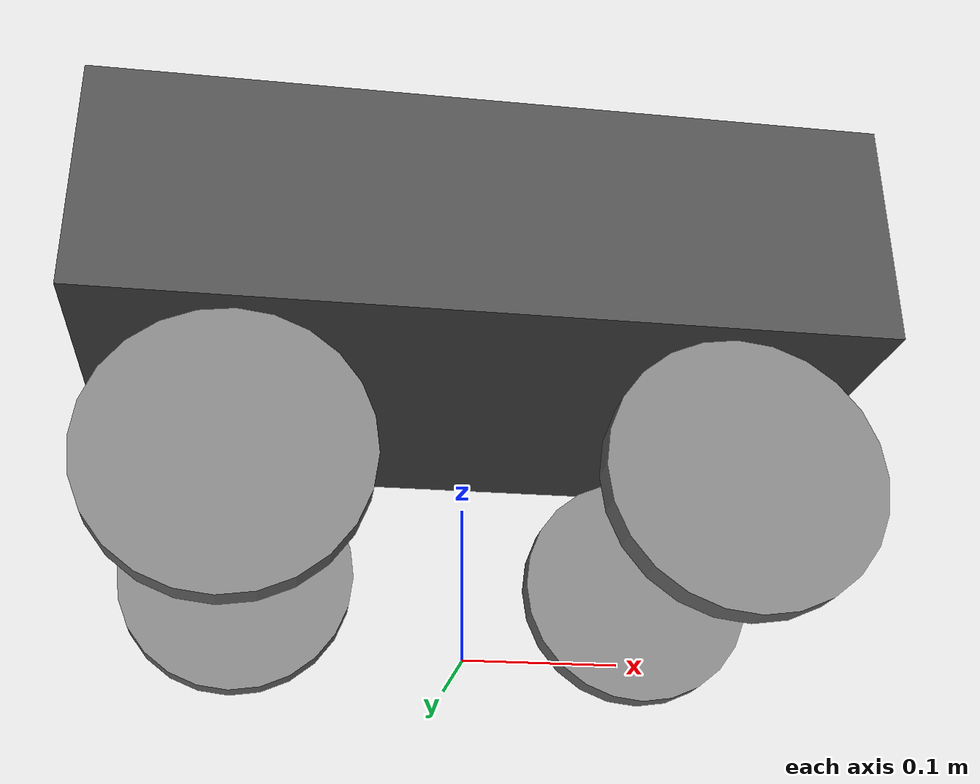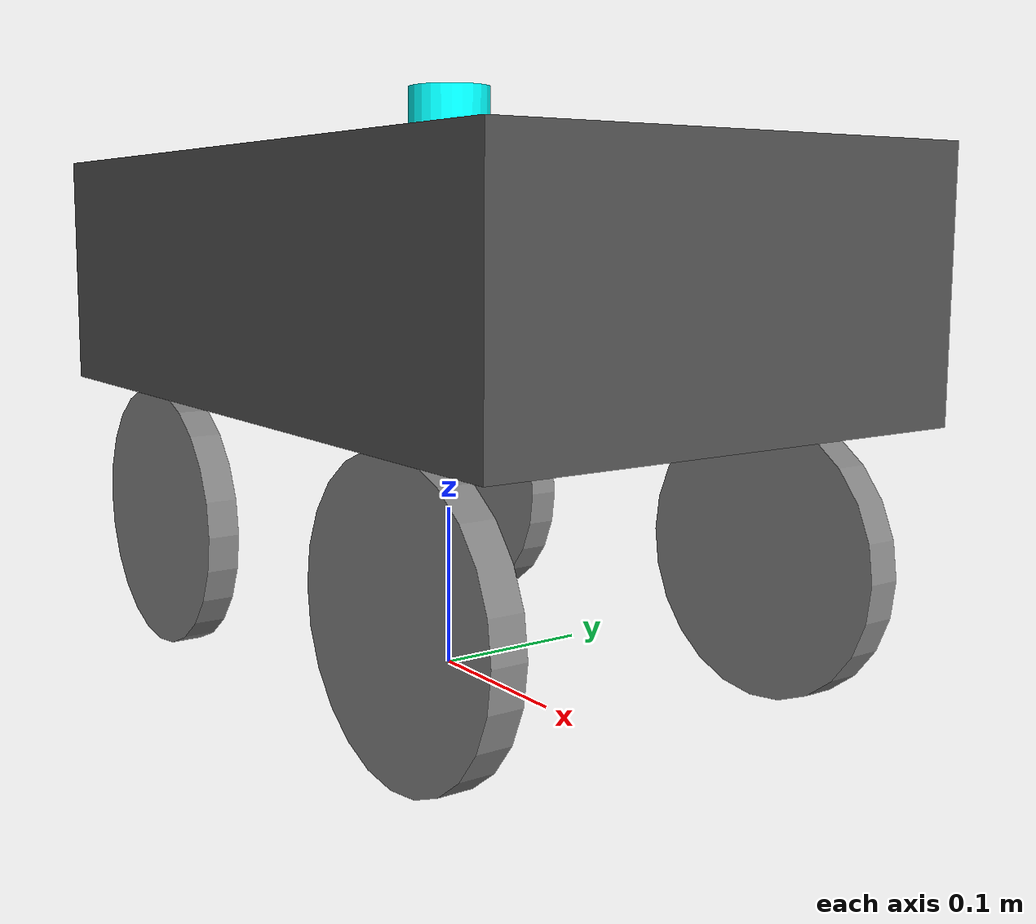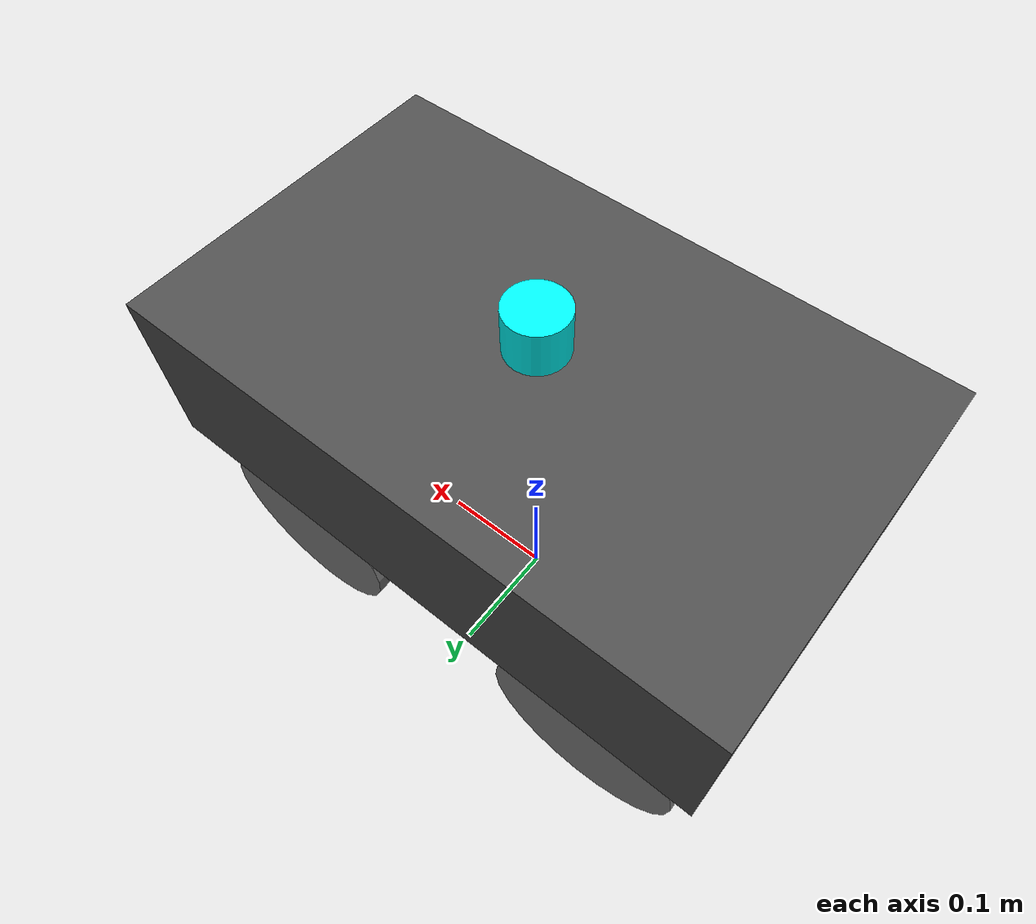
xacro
<?xml version="1.0" ?>
<!-- |    This document was autogenerated by xacro from /home/swimming/gcamp_ros2_ws/src/gcamp_ros2_basic/gcamp_gazebo/urdf/skidbot2.urdf.xacro | -->
<!-- |    EDITING THIS FILE BY HAND IS NOT RECOMMENDED                                 | -->
<robot xmlns:xacro="http://www.ros.org/wiki/xacro" name="wall_bot">
  <xacro:property name="PI" value="3.1415926535"/><!--파이 값-->

  <xacro:property name="BASE_LEN" value="0.5"/><!--이지아이 몸통  길이-->
  <xacro:property name="BASE_WID" value="0.3"/><!--이지아이 몸통 너비-->
  <xacro:property name="BASE_HIG" value="0.15"/> <!--이지아이 몸통 높이-->

  <xacro:property name="WHEEL_LEN_SEP" value="0.3"/><!--바퀴 세로 간격-->
  <xacro:property name="WHEEL_WID_SEP" value="0.25"/><!--바퀴 가로 간격-->
  <xacro:property name="WHEEL_RAD" value="0.085"/><!--바퀴 반 지름 수정 후 (바퀴 베이스 높이 만큼 바퀴 크기 증가)-->
  <xacro:property name="WHEEL_WID" value="0.02"/><!--바퀴 너비-->

  <!-- 바퀴 베이스 tf 복잡하여 사용 안함(주석 처리) -->

  <xacro:property name="VMS_LEN" value="0.765"/><!--전광판 길이-->
  <xacro:property name="VMS_WID" value="0.701"/><!--전광판 너비 -->
  <xacro:property name="VMS_HIG" value="0.134"/><!--전광판 높이-->

  <xacro:property name="VMS_CYLINDER_RAD" value="0.020"/><!--전광판 관절 반지름 -->
  <xacro:property name="VMS_CYLINDER_WID" value="0.380"/><!--전광판 관절 길이 -->

  <xacro:property name="VMS_CYLINDER_X_LEN" value="0.235"/><!--전면으로부터 전광판 X축 관절 간격 -->

  <xacro:property name="VMS_CYLINDER_BASE_LEN" value="0.035"/><!--전광판 관절 베이스 길이 -->
  <xacro:property name="VMS_CYLINDER_BASE_WID" value="0.01"/><!--전광판 관절 베이스 두께 -->
  <xacro:property name="VMS_CYLINDER_BASE_HIG" value="0.13"/><!--전광판 관절 베이스 높이 -->

  <!-- 라이다 베이스 tf 복잡하여 사용 안함(주석 처리) -->

  <xacro:property name="LIDAR_RAD" value="0.025"/>  <!-- 라이다 길이 -->
  <xacro:property name="LIDAR_HIG" value="0.04"/>  <!-- 라이다 높이(0.06) + 라이다 베이스 높이(0.035)-->
  <!-- 베이스 높이만큼 라이다 높이 증가 -->

  <xacro:property name="F_LIDAR_SEP_LEN" value="0.072"/>  <!-- 전면 라이다  세로 간격  -->
  <xacro:property name="F_LIDAR_SEP_WID" value="0.072"/>  <!-- 전면 라이다 가로 간격 -->

  <xacro:property name="B_LIDAR_SEP_LEN" value="0.072"/>  <!-- 후면 라이다  세로 간격  -->
  <xacro:property name="B_LIDAR_SEP_WID" value="0.070"/>  <!-- 후면 라이다 가로 간격 -->

  <xacro:property name="CAMERA_LEN" value="0.025"/>  <!-- 카메라 길이 -->
  <xacro:property name="CAMERA_WID" value="0.1"/>  <!-- 카메라 너비-->
  <xacro:property name="CAMERA_HIG" value="0.04"/>  <!-- 카메라 높이 -->
  <xacro:property name="CAMERA_X_LEN" value="0.042"/>  <!-- 카메라 X 간격 -->
  <xacro:property name="LEFT_CAMERA_Y_LEN" value="0.06"/>  <!-- 왼쪽 카메라 Y 간격 -->

  <xacro:property name="LEFT_CAMERA_X_LEN" value="0.06"/>  <!-- 왼쪽 카메라 X축 간격 -->
  <xacro:property name="LEFT_CAMERA_Y_LEN" value="0.07"/>  <!-- 왼쪽 카메라 Y축 간격 -->

  <xacro:property name="BACK_CAMERA_X_LEN" value="0.13"/>  <!-- 뒤쪽 카메라 X축 간격 -->

  <xacro:property name="GPS_ANTENNA_RAD" value="0.075"/>  <!-- GPS 안테나 반지름 -->
  <xacro:property name="GPS_ANTENNA_HIG" value="0.04"/>  <!-- GPS 안테나 높이 -->

  <xacro:property name="BASE_GPS_ANTENNA_SEP" value="0.15"/>  <!-- 몸통 GPS 안테나 간격  -->

  <xacro:property name="IMU_LEN" value="0.035"/>  <!-- IMU 길이 -->
  <xacro:property name="IMU_WID" value="0.035"/>  <!-- IMU 너비 -->
  <xacro:property name="IMU_HIG" value="0.01"/>  <!-- IMU 높이 -->
  <xacro:property name="IMU_X_SEP" value="0.225"/>  <!-- IMU X축 간격 -->

  <xacro:property name="WHEEL_MASS" value="1.0"/><!--바퀴 무게-->
  <xacro:property name="BASE_LINK_MASS" value="5.0"/><!--이지아이 몸통 무게-->
  <xacro:property name="WHEEL_BASE_MASS" value="0.5"/><!--이지아이 몸통 무게-->

  <xacro:property name="VMS_MASS" value="20.0"/> <!--전광팡 무게-->
  <xacro:property name="VMS_CYLINDER_MASS" value="10.0"/> <!--전광팡 관절 무게-->
  <xacro:property name="VMS_CYLINDER_BASE_MASS" value="1.0"/> <!--전광팡 관절 베이스 무게-->

  <xacro:property name="CAMERA_MASS" value="2.0"/> <!--카메라 무게-->

  <xacro:property name="GPS_ANTENNA_MASS" value="2.0"/> <!--GPS 안테나 무게-->

  <xacro:property name="LIDAR_MASS" value="0.265"/> <!--라이다 무게-->
  <xacro:property name="LIDAR_BASE_MASS" value="0.1"/> <!--라이다 베이스 무게-->

  <xacro:property name="IMU_MASS" value="0.05"/> <!--IMU 무게-->

<!--배터리 탱크 길이-->
<!--배터리 탱크 높이-->
<!--배터리 탱크 너비-->

  <material name="dark">
    <color rgba="0.3 0.3 0.3 1.0"/>
  </material>

  <material name="mid_dark">
    <color rgba="0.40 0.40 0.40 1.0"/>
  </material>

  <material name="gray">
    <color rgba="0.5 0.5 0.5 1.0"/>
  </material>

  <material name="blue_green">
    <color rgba="0 1.0 1.0 1.0"/>
  </material>

  <material name="white">
    <color rgba="1.0 1.0 1.0 1.0"/>
  </material>

  <link name="base_link"/>

  <link name="base_chassis">
    <visual>
      <origin xyz="0 0 0" rpy="0 0 0"/>
      <geometry>
        <box size="${BASE_LEN} ${BASE_WID} ${BASE_HIG}"/>
      </geometry>
      <material name="dark"/>
    </visual>

    <collision>
      <origin xyz="0 0 0" rpy="0 0 0"/>
      <geometry>
        <box size="${BASE_LEN} ${BASE_WID} ${BASE_HIG}"/>
      </geometry>
    </collision>

    <inertial>
      <mass value="${BASE_LINK_MASS}"/>
      <origin xyz="0 0 0" rpy="0 0 0"/>
      <inertia
        ixx="${BASE_LINK_MASS/12.0 * (BASE_WID*BASE_WID + BASE_HIG*BASE_HIG)}"
        iyy="${BASE_LINK_MASS/12.0 * (BASE_LEN*BASE_LEN + BASE_HIG*BASE_HIG)}"
        izz="${BASE_LINK_MASS/12.0 * (BASE_LEN*BASE_LEN + BASE_WID*BASE_WID)}"
        ixy="0.0" ixz="0.0" iyz="0.0"/>
    </inertial>
  </link>

  <link name="imu">
    <visual>
      <origin xyz="0 0 0" rpy="0 0 0"/>
      <geometry>
        <box size="${IMU_LEN} ${IMU_WID} ${IMU_HIG}"/>
      </geometry>
      <material name="mid_dark"/>
    </visual>

    <collision>
      <origin xyz="0 0 0" rpy="0 0 0"/>
      <geometry>
        <box size="${IMU_LEN} ${IMU_WID} ${IMU_HIG}"/>
      </geometry>
    </collision>

    <inertial>
      <mass value="${IMU_MASS}"/>
      <origin xyz="0 0 0" rpy="0 0 0"/>
      <inertia
        ixx="${IMU_MASS/12.0 * (IMU_WID*IMU_WID + IMU_HIG*IMU_HIG)}"
        iyy="${IMU_MASS/12.0 * (IMU_LEN*IMU_LEN + IMU_HIG*IMU_HIG)}"
        izz="${IMU_MASS/12.0 * (IMU_LEN*IMU_LEN + IMU_WID*IMU_WID)}"
        ixy="0" ixz="0" iyz="0"
      />
    </inertial>
  </link>

  <link name="front_lidar">
    <visual>
      <origin xyz="0 0 0" rpy="0 0 0"/>
      <geometry>
        <cylinder radius="${LIDAR_RAD}" length="${LIDAR_HIG}"/>
      </geometry>
      <material name="blue_green"/>
    </visual>

    <collision>
      <origin xyz="0 0 0" rpy="0 0 0"/>
      <geometry>
        <cylinder radius="${LIDAR_RAD}" length="${LIDAR_HIG}"/>
      </geometry>
    </collision>

    <inertial>
      <mass value="${LIDAR_MASS}"/>
      <origin xyz="0 0 0" rpy="0 0 0"/>
      <inertia
        ixx="${0.5*LIDAR_MASS*LIDAR_HIG*LIDAR_HIG}"
        iyy="${(1.0/12.0)*LIDAR_MASS*(3*LIDAR_RAD*LIDAR_RAD + LIDAR_HIG*LIDAR_HIG)}"
        izz="${(1.0/12.0)*LIDAR_MASS*(3*LIDAR_RAD*LIDAR_RAD + LIDAR_HIG*LIDAR_HIG)}"
        ixy="0.0" ixz="0.0" iyz="0.0"
      />
    </inertial>
  </link>

  <link name="front_left_wheel">
    <visual>
      <origin xyz="0 0 0" rpy="${PI/2} 0 0"/>
      <geometry>
        <cylinder radius="${WHEEL_RAD}" length="${WHEEL_WID}"/>
      </geometry>
      <material name="gray"/>
    </visual>

    <collision>
      <origin xyz="0 0 0" rpy="${PI/2} 0 0"/>
      <geometry>
        <cylinder radius="${WHEEL_RAD}" length="${WHEEL_WID}"/>
      </geometry>
    </collision>

    <inertial>
      <mass value="${WHEEL_MASS}"/>
      <origin xyz="0 0 0" rpy="${PI/2} 0 0"/>
      <inertia
        ixx="${0.5*WHEEL_MASS*WHEEL_RAD*WHEEL_RAD}"
        iyy="${(1.0/12.0)*WHEEL_MASS*(3*WHEEL_RAD*WHEEL_RAD + WHEEL_WID*WHEEL_WID)}"
        izz="${(1.0/12.0)*WHEEL_MASS*(3*WHEEL_RAD*WHEEL_RAD + WHEEL_WID*WHEEL_WID)}"
        ixy="0.0" ixz="0.0" iyz="0.0"
      />
    </inertial>
  </link>

  <link name="back_left_wheel">
    <visual>
      <origin xyz="0 0 0" rpy="${PI/2} 0 0"/>
      <geometry>
        <cylinder radius="${WHEEL_RAD}" length="${WHEEL_WID}"/>
      </geometry>
      <material name="gray"/>
    </visual>

    <collision>
      <origin xyz="0 0 0" rpy="${PI/2} 0 0"/>
      <geometry>
        <cylinder radius="${WHEEL_RAD}" length="${WHEEL_WID}"/>
      </geometry>
    </collision>

    <inertial>
      <mass value="${WHEEL_MASS}"/>
      <origin xyz="0 0 0" rpy="${PI/2} 0 0"/>
      <inertia
        ixx="${0.5*WHEEL_MASS*WHEEL_RAD*WHEEL_RAD}"
        iyy="${(1.0/12.0)*WHEEL_MASS*(3*WHEEL_RAD*WHEEL_RAD + WHEEL_WID*WHEEL_WID)}"
        izz="${(1.0/12.0)*WHEEL_MASS*(3*WHEEL_RAD*WHEEL_RAD + WHEEL_WID*WHEEL_WID)}"
        ixy="0.0" ixz="0.0" iyz="0.0"
      />
    </inertial>
  </link>

  <link name="front_right_wheel">
    <visual>
      <origin xyz="0 0 0" rpy="${PI/2} 0 0"/>
      <geometry>
        <cylinder radius="${WHEEL_RAD}" length="${WHEEL_WID}"/>
      </geometry>
      <material name="gray"/>
    </visual>

    <collision>
      <origin xyz="0 0 0" rpy="${PI/2} 0 0"/>
      <geometry>
        <cylinder radius="${WHEEL_RAD}" length="${WHEEL_WID}"/>
      </geometry>
    </collision>

    <inertial>
      <mass value="${WHEEL_MASS}"/>
      <origin xyz="0 0 0" rpy="${PI/2} 0 0"/>
      <inertia
        ixx="${0.5*WHEEL_MASS*WHEEL_RAD*WHEEL_RAD}"
        iyy="${(1.0/12.0)*WHEEL_MASS*(3*WHEEL_RAD*WHEEL_RAD + WHEEL_WID*WHEEL_WID)}"
        izz="${(1.0/12.0)*WHEEL_MASS*(3*WHEEL_RAD*WHEEL_RAD + WHEEL_WID*WHEEL_WID)}"
        ixy="0.0" ixz="0.0" iyz="0.0"
      />
    </inertial>
  </link>

  <link name="back_right_wheel">
    <visual>
      <origin xyz="0 0 0" rpy="${PI/2} 0 0"/>
      <geometry>
        <cylinder radius="${WHEEL_RAD}" length="${WHEEL_WID}"/>
      </geometry>
      <material name="gray"/>
    </visual>

    <collision>
      <origin xyz="0 0 0" rpy="${PI/2} 0 0"/>
      <geometry>
        <cylinder radius="${WHEEL_RAD}" length="${WHEEL_WID}"/>
      </geometry>
    </collision>

    <inertial>
      <mass value="${WHEEL_MASS}"/>
      <origin xyz="0 0 0" rpy="${PI/2} 0 0"/>
      <inertia
        ixx="${0.5*WHEEL_MASS*WHEEL_RAD*WHEEL_RAD}"
        iyy="${(1.0/12.0)*WHEEL_MASS*(3*WHEEL_RAD*WHEEL_RAD + WHEEL_WID*WHEEL_WID)}"
        izz="${(1.0/12.0)*WHEEL_MASS*(3*WHEEL_RAD*WHEEL_RAD + WHEEL_WID*WHEEL_WID)}"
        ixy="0.0" ixz="0.0" iyz="0.0"
      />
    </inertial>
  </link>

  <!-- base_link는 지면 좌표, base_chassis 지면으로부터 떨어져 있는 실제 로봇 몸통 중심 높이(바퀴 크기 + 로봇 몸통 중간-->
  <joint name="base_joint" type="fixed">
    <origin xyz="0 0 ${BASE_HIG/2 +WHEEL_RAD*2}" rpy="0 0 0"/>
    <parent link="base_link"/>
    <child link="base_chassis"/>
  </joint>

  <joint name="imu_joint" type="fixed">
    <origin xyz="${BASE_LEN/2 - IMU_X_SEP} 0 ${IMU_HIG/2}" rpy="0 0 0"/>
    <parent link="base_chassis"/>
    <child link="imu"/>
  </joint>

  <!-- 몸통 GPS -->

  <!--바퀴 -->
  <joint name="front_left_wheel_joint" type="continuous">
    <origin xyz="${WHEEL_LEN_SEP/2} ${WHEEL_WID_SEP/2} ${-(WHEEL_RAD + BASE_HIG/2)}" rpy="0 0 0"/>
    <parent link="base_chassis"/>
    <child link="front_left_wheel"/>
    <axis xyz="0 1 0"/>
  </joint>

  <joint name="back_left_wheel_joint" type="continuous">
    <origin xyz="-${WHEEL_LEN_SEP/2} ${WHEEL_WID_SEP/2} ${-(WHEEL_RAD+ BASE_HIG/2)}" rpy="0 0 0"/>
    <parent link="base_chassis"/>
    <child link="back_left_wheel"/>
    <axis xyz="0 1 0"/>
  </joint>

  <joint name="front_right_wheel_joint" type="continuous">
    <origin xyz="${WHEEL_LEN_SEP/2} -${WHEEL_WID_SEP/2} ${-(WHEEL_RAD + BASE_HIG/2)}" rpy="0 0 0"/>
    <parent link="base_chassis"/>
    <child link="front_right_wheel"/>
    <axis xyz="0 1 0"/>
  </joint>

  <joint name="back_right_wheel_joint" type="continuous">
    <origin xyz="-${WHEEL_LEN_SEP/2} -${WHEEL_WID_SEP/2} ${-(WHEEL_RAD + BASE_HIG/2)}" rpy="0 0 0"/>
    <parent link="base_chassis"/>
    <child link="back_right_wheel"/>
    <axis xyz="0 1 0"/>
  </joint>

  <!--바퀴 베이스-->

  <!-- 라이다 -->
  <joint name="front_lidar_joint" type="fixed">
    <origin xyz="0 0 ${BASE_HIG/2 + LIDAR_HIG/2}" rpy="0 0 0"/> <!-- wall_pilot을 위해 기울기 0도로 수정 -->
    <parent link="base_chassis"/>
    <child link="front_lidar"/>
  </joint>

  <!-- 라이다 베이스 주석처리 -->

  <gazebo reference="base_link">
    <material>Gazebo/White</material>
  </gazebo>

  <gazebo reference="front_left_wheel">
    <material>Gazebo/Black</material>
  </gazebo>
  <gazebo reference="back_left_wheel">
    <material>Gazebo/Black</material>
  </gazebo>
  <gazebo reference="front_right_wheel">
    <material>Gazebo/Black</material>
  </gazebo>
  <gazebo reference="back_right_wheel">
    <material>Gazebo/Black</material>
  </gazebo>

  <gazebo reference="front_lidar">
    <material>Gazebo/Darkgray</material>
    <sensor name="front_lidar_senser" type="ray">
      <visualize>false</visualize>
      <update_rate>10.0</update_rate>
      <ray>
        <scan>
          <horizontal>
            <samples>360</samples> <!-- 라이다 포인트 수 : 180개-->
            <resolution>1</resolution> <!-- 라이다 포인터 간 각도 : 1도-->
            <max_angle>3.14</max_angle>
            <min_angle>-3.14</min_angle>
          </horizontal> <!-- 라이다 범위 : 180도 , 포인트 수 : 180 , 포인터 간 각도 : 1도-->
        </scan>
        <range><!-- ydlidar 기준 0.12~10.0까지 가능 -->
          <min>0.12</min> <!-- 20cm부터-->
          <max>5.0</max> <!-- 5m까지 -->
        </range>
      </ray>
      <plugin name="front_lidar_controller" filename="libgazebo_ros_ray_sensor.so">
        <ros>

          <argument>~/out:=/scan</argument>
        </ros>
        <output_type>sensor_msgs/LaserScan</output_type>
        <frameName>front_lidar</frameName>
        <updateRate>10.0</updateRate>
      </plugin>
    </sensor>
  </gazebo>

  <!--skid_steer_drive_controller-->
  <!-- 4륜차-->
  <gazebo>
    <plugin filename="libgazebo_ros_diff_drive.so" name="skid_steer_drive_controller"> <!-- 4륜차-->
      <ros>
        <namespace>/wall_bot</namespace>
        <remapping>/cmd_vel:=/cmd_vel</remapping>
        <remapping>/odom:=/odom</remapping>
      </ros>
      <update_rate>40.0</update_rate>
      <num_wheel_pairs>2</num_wheel_pairs>
      <odometry_frame>odom</odometry_frame>
      <left_joint>front_left_wheel_joint</left_joint>
      <left_joint>back_left_wheel_joint</left_joint>
      <right_joint>front_right_wheel_joint</right_joint>
      <right_joint>back_right_wheel_joint</right_joint>
      <wheel_radius>${WHEEL_RAD}</wheel_radius>
      <wheel_diameter>${2*WHEEL_RAD}</wheel_diameter>
      <wheel_separation>${WHEEL_WID_SEP}</wheel_separation>
      <max_wheel_torque>30</max_wheel_torque>
      <robot_base_frame>base_link</robot_base_frame>

      <publish_odom>true</publish_odom>
      <publish_odom_tf>true</publish_odom_tf>
      <publish_wheel_tf>true</publish_wheel_tf>
    </plugin>
  </gazebo>
</robot>
